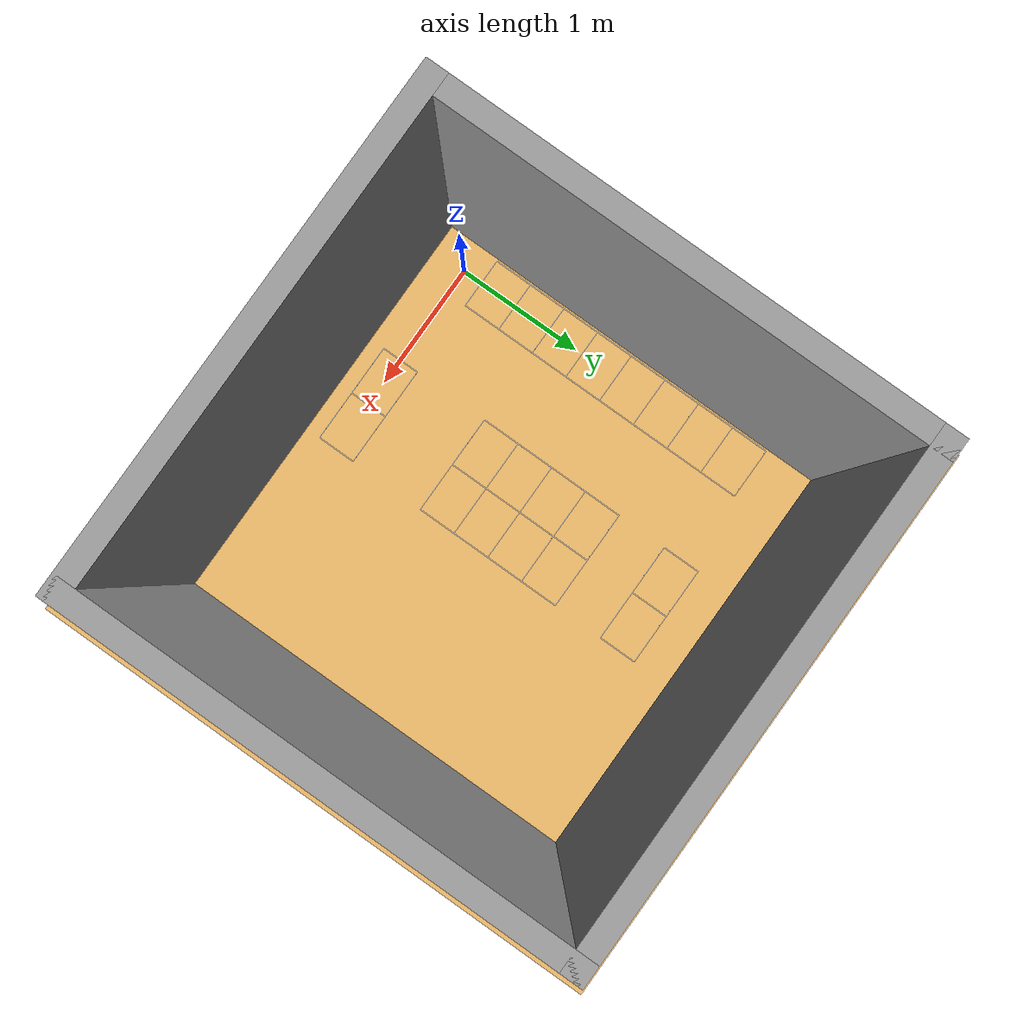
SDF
<sdf version="1.7">
 <world name="parking_lot">
  <light name="sun" type="directional">
   <pose>0 0 10 0 -0 0</pose>
   <diffuse>0.8 0.8 0.8 1</diffuse>
   <specular>0.2 0.2 0.2 1</specular>
   <attenuation>
    <range>1000</range>
    <constant>0.9</constant>
    <linear>0.01</linear>
    <quadratic>0.001</quadratic>
   </attenuation>
   <direction>-0.5 0.1 -0.9</direction>
   <spot><inner_angle>0</inner_angle><outer_angle>0</outer_angle><falloff>0</falloff></spot>
  </light>
  <model name="wood_ground_plane">
   <static>1</static>
   <link name="ground_link">
    <visual name="ground_visual">
     <geometry><plane><normal>0 0 1</normal><size>20 20</size></plane></geometry>
     <material><ambient>0.9 0.7 0.4 1</ambient><diffuse>0.9 0.7 0.4 1</diffuse></material>
    </visual>
    <collision name="collision">
     <geometry><plane><normal>0 0 1</normal><size>20 20</size></plane></geometry>
    </collision>
   </link>
  </model>
  <model name="parking_spot_1">
   <static>1</static>
   <pose>0 0.3 0 0 -0 0</pose>
   <link name="spot_link">
    <visual name="base_plate">
     <geometry><box><size>0.4 0.3 0.001</size></box></geometry>
     <material><ambient>0.9 0.7 0.4 1</ambient><diffuse>0.9 0.7 0.4 1</diffuse></material>
    </visual>
    <visual name="top_border">
     <pose>0 0.15 0.002 0 -0 0</pose>
     <geometry><box><size>0.4 0.005 0.001</size></box></geometry>
     <material><ambient>1 1 1 1</ambient><diffuse>1 1 1 1</diffuse></material>
    </visual>
    <visual name="bottom_border">
     <pose>0 -0.15 0.002 0 -0 0</pose>
     <geometry><box><size>0.4 0.005 0.001</size></box></geometry>
     <material><ambient>1 1 1 1</ambient><diffuse>1 1 1 1</diffuse></material>
    </visual>
    <visual name="left_border">
     <pose>-0.2 0 0.002 0 -0 0</pose>
     <geometry><box><size>0.005 0.3 0.001</size></box></geometry>
     <material><ambient>1 1 1 1</ambient><diffuse>1 1 1 1</diffuse></material>
    </visual>
    <visual name="right_border">
     <pose>0.2 0 0.002 0 -0 0</pose>
     <geometry><box><size>0.005 0.3 0.001</size></box></geometry>
     <material><ambient>1 1 1 1</ambient><diffuse>1 1 1 1</diffuse></material>
    </visual>
   </link>
  </model>
  <model name="parking_spot_2">
   <static>1</static>
   <pose>0 0.6 0 0 -0 0</pose>
   <link name="spot_link">
    <visual name="base_plate">
     <geometry><box><size>0.4 0.3 0.001</size></box></geometry>
     <material><ambient>0.9 0.7 0.4 1</ambient><diffuse>0.9 0.7 0.4 1</diffuse></material>
    </visual>
    <visual name="top_border">
     <pose>0 0.15 0.002 0 -0 0</pose>
     <geometry><box><size>0.4 0.005 0.001</size></box></geometry>
     <material><ambient>1 1 1 1</ambient><diffuse>1 1 1 1</diffuse></material>
    </visual>
    <visual name="bottom_border">
     <pose>0 -0.15 0.002 0 -0 0</pose>
     <geometry><box><size>0.4 0.005 0.001</size></box></geometry>
     <material><ambient>1 1 1 1</ambient><diffuse>1 1 1 1</diffuse></material>
    </visual>
    <visual name="left_border">
     <pose>-0.2 0 0.002 0 -0 0</pose>
     <geometry><box><size>0.005 0.3 0.001</size></box></geometry>
     <material><ambient>1 1 1 1</ambient><diffuse>1 1 1 1</diffuse></material>
    </visual>
    <visual name="right_border">
     <pose>0.2 0 0.002 0 -0 0</pose>
     <geometry><box><size>0.005 0.3 0.001</size></box></geometry>
     <material><ambient>1 1 1 1</ambient><diffuse>1 1 1 1</diffuse></material>
    </visual>
   </link>
  </model>
  <model name="parking_spot_3">
   <static>1</static>
   <pose>0 0.9 0 0 -0 0</pose>
   <link name="spot_link">
    <visual name="base_plate">
     <geometry><box><size>0.4 0.3 0.001</size></box></geometry>
     <material><ambient>0.9 0.7 0.4 1</ambient><diffuse>0.9 0.7 0.4 1</diffuse></material>
    </visual>
    <visual name="top_border">
     <pose>0 0.15 0.002 0 -0 0</pose>
     <geometry><box><size>0.4 0.005 0.001</size></box></geometry>
     <material><ambient>1 1 1 1</ambient><diffuse>1 1 1 1</diffuse></material>
    </visual>
    <visual name="bottom_border">
     <pose>0 -0.15 0.002 0 -0 0</pose>
     <geometry><box><size>0.4 0.005 0.001</size></box></geometry>
     <material><ambient>1 1 1 1</ambient><diffuse>1 1 1 1</diffuse></material>
    </visual>
    <visual name="left_border">
     <pose>-0.2 0 0.002 0 -0 0</pose>
     <geometry><box><size>0.005 0.3 0.001</size></box></geometry>
     <material><ambient>1 1 1 1</ambient><diffuse>1 1 1 1</diffuse></material>
    </visual>
    <visual name="right_border">
     <pose>0.2 0 0.002 0 -0 0</pose>
     <geometry><box><size>0.005 0.3 0.001</size></box></geometry>
     <material><ambient>1 1 1 1</ambient><diffuse>1 1 1 1</diffuse></material>
    </visual>
   </link>
  </model>
  <model name="parking_spot_4">
   <static>1</static>
   <pose>0 1.2 0 0 -0 0</pose>
   <link name="spot_link">
    <visual name="base_plate">
     <geometry><box><size>0.4 0.3 0.001</size></box></geometry>
     <material><ambient>0.9 0.7 0.4 1</ambient><diffuse>0.9 0.7 0.4 1</diffuse></material>
    </visual>
    <visual name="top_border">
     <pose>0 0.15 0.002 0 -0 0</pose>
     <geometry><box><size>0.4 0.005 0.001</size></box></geometry>
     <material><ambient>1 1 1 1</ambient><diffuse>1 1 1 1</diffuse></material>
    </visual>
    <visual name="bottom_border">
     <pose>0 -0.15 0.002 0 -0 0</pose>
     <geometry><box><size>0.4 0.005 0.001</size></box></geometry>
     <material><ambient>1 1 1 1</ambient><diffuse>1 1 1 1</diffuse></material>
    </visual>
    <visual name="left_border">
     <pose>-0.2 0 0.002 0 -0 0</pose>
     <geometry><box><size>0.005 0.3 0.001</size></box></geometry>
     <material><ambient>1 1 1 1</ambient><diffuse>1 1 1 1</diffuse></material>
    </visual>
    <visual name="right_border">
     <pose>0.2 0 0.002 0 -0 0</pose>
     <geometry><box><size>0.005 0.3 0.001</size></box></geometry>
     <material><ambient>1 1 1 1</ambient><diffuse>1 1 1 1</diffuse></material>
    </visual>
   </link>
  </model>
  <model name="parking_spot_5">
   <static>1</static>
   <pose>0 1.5 0 0 -0 0</pose>
   <link name="spot_link">
    <visual name="base_plate">
     <geometry><box><size>0.4 0.3 0.001</size></box></geometry>
     <material><ambient>0.9 0.7 0.4 1</ambient><diffuse>0.9 0.7 0.4 1</diffuse></material>
    </visual>
    <visual name="top_border">
     <pose>0 0.15 0.002 0 -0 0</pose>
     <geometry><box><size>0.4 0.005 0.001</size></box></geometry>
     <material><ambient>1 1 1 1</ambient><diffuse>1 1 1 1</diffuse></material>
    </visual>
    <visual name="bottom_border">
     <pose>0 -0.15 0.002 0 -0 0</pose>
     <geometry><box><size>0.4 0.005 0.001</size></box></geometry>
     <material><ambient>1 1 1 1</ambient><diffuse>1 1 1 1</diffuse></material>
    </visual>
    <visual name="left_border">
     <pose>-0.2 0 0.002 0 -0 0</pose>
     <geometry><box><size>0.005 0.3 0.001</size></box></geometry>
     <material><ambient>1 1 1 1</ambient><diffuse>1 1 1 1</diffuse></material>
    </visual>
    <visual name="right_border">
     <pose>0.2 0 0.002 0 -0 0</pose>
     <geometry><box><size>0.005 0.3 0.001</size></box></geometry>
     <material><ambient>1 1 1 1</ambient><diffuse>1 1 1 1</diffuse></material>
    </visual>
   </link>
  </model>
  <model name="parking_spot_6">
   <static>1</static>
   <pose>0 1.8 0 0 -0 0</pose>
   <link name="spot_link">
    <visual name="base_plate">
     <geometry><box><size>0.4 0.3 0.001</size></box></geometry>
     <material><ambient>0.9 0.7 0.4 1</ambient><diffuse>0.9 0.7 0.4 1</diffuse></material>
    </visual>
    <visual name="top_border">
     <pose>0 0.15 0.002 0 -0 0</pose>
     <geometry><box><size>0.4 0.005 0.001</size></box></geometry>
     <material><ambient>1 1 1 1</ambient><diffuse>1 1 1 1</diffuse></material>
    </visual>
    <visual name="bottom_border">
     <pose>0 -0.15 0.002 0 -0 0</pose>
     <geometry><box><size>0.4 0.005 0.001</size></box></geometry>
     <material><ambient>1 1 1 1</ambient><diffuse>1 1 1 1</diffuse></material>
    </visual>
    <visual name="left_border">
     <pose>-0.2 0 0.002 0 -0 0</pose>
     <geometry><box><size>0.005 0.3 0.001</size></box></geometry>
     <material><ambient>1 1 1 1</ambient><diffuse>1 1 1 1</diffuse></material>
    </visual>
    <visual name="right_border">
     <pose>0.2 0 0.002 0 -0 0</pose>
     <geometry><box><size>0.005 0.3 0.001</size></box></geometry>
     <material><ambient>1 1 1 1</ambient><diffuse>1 1 1 1</diffuse></material>
    </visual>
   </link>
  </model>
  <model name="parking_spot_7">
   <static>1</static>
   <pose>0 2.1 0 0 -0 0</pose>
   <link name="spot_link">
    <visual name="base_plate">
     <geometry><box><size>0.4 0.3 0.001</size></box></geometry>
     <material><ambient>0.9 0.7 0.4 1</ambient><diffuse>0.9 0.7 0.4 1</diffuse></material>
    </visual>
    <visual name="top_border">
     <pose>0 0.15 0.002 0 -0 0</pose>
     <geometry><box><size>0.4 0.005 0.001</size></box></geometry>
     <material><ambient>1 1 1 1</ambient><diffuse>1 1 1 1</diffuse></material>
    </visual>
    <visual name="bottom_border">
     <pose>0 -0.15 0.002 0 -0 0</pose>
     <geometry><box><size>0.4 0.005 0.001</size></box></geometry>
     <material><ambient>1 1 1 1</ambient><diffuse>1 1 1 1</diffuse></material>
    </visual>
    <visual name="left_border">
     <pose>-0.2 0 0.002 0 -0 0</pose>
     <geometry><box><size>0.005 0.3 0.001</size></box></geometry>
     <material><ambient>1 1 1 1</ambient><diffuse>1 1 1 1</diffuse></material>
    </visual>
    <visual name="right_border">
     <pose>0.2 0 0.002 0 -0 0</pose>
     <geometry><box><size>0.005 0.3 0.001</size></box></geometry>
     <material><ambient>1 1 1 1</ambient><diffuse>1 1 1 1</diffuse></material>
    </visual>
   </link>
  </model>
  <model name="parking_spot_8">
   <static>1</static>
   <pose>0 2.4 0 0 -0 0</pose>
   <link name="spot_link">
    <visual name="base_plate">
     <geometry><box><size>0.4 0.3 0.001</size></box></geometry>
     <material><ambient>0.9 0.7 0.4 1</ambient><diffuse>0.9 0.7 0.4 1</diffuse></material>
    </visual>
    <visual name="top_border">
     <pose>0 0.15 0.002 0 -0 0</pose>
     <geometry><box><size>0.4 0.005 0.001</size></box></geometry>
     <material><ambient>1 1 1 1</ambient><diffuse>1 1 1 1</diffuse></material>
    </visual>
    <visual name="bottom_border">
     <pose>0 -0.15 0.002 0 -0 0</pose>
     <geometry><box><size>0.4 0.005 0.001</size></box></geometry>
     <material><ambient>1 1 1 1</ambient><diffuse>1 1 1 1</diffuse></material>
    </visual>
    <visual name="left_border">
     <pose>-0.2 0 0.002 0 -0 0</pose>
     <geometry><box><size>0.005 0.3 0.001</size></box></geometry>
     <material><ambient>1 1 1 1</ambient><diffuse>1 1 1 1</diffuse></material>
    </visual>
    <visual name="right_border">
     <pose>0.2 0 0.002 0 -0 0</pose>
     <geometry><box><size>0.005 0.3 0.001</size></box></geometry>
     <material><ambient>1 1 1 1</ambient><diffuse>1 1 1 1</diffuse></material>
    </visual>
   </link>
  </model>
  <model name="parking_spot_9">
   <static>1</static>
   <pose>1 0 0 0 -0 0</pose>
   <link name="spot_link">
    <visual name="base_plate">
     <geometry><box><size>0.4 0.3 0.001</size></box></geometry>
     <material><ambient>0.9 0.7 0.4 1</ambient><diffuse>0.9 0.7 0.4 1</diffuse></material>
    </visual>
    <visual name="top_border">
     <pose>0 0.15 0.002 0 -0 0</pose>
     <geometry><box><size>0.4 0.005 0.001</size></box></geometry>
     <material><ambient>1 1 1 1</ambient><diffuse>1 1 1 1</diffuse></material>
    </visual>
    <visual name="bottom_border">
     <pose>0 -0.15 0.002 0 -0 0</pose>
     <geometry><box><size>0.4 0.005 0.001</size></box></geometry>
     <material><ambient>1 1 1 1</ambient><diffuse>1 1 1 1</diffuse></material>
    </visual>
    <visual name="left_border">
     <pose>-0.2 0 0.002 0 -0 0</pose>
     <geometry><box><size>0.005 0.3 0.001</size></box></geometry>
     <material><ambient>1 1 1 1</ambient><diffuse>1 1 1 1</diffuse></material>
    </visual>
    <visual name="right_border">
     <pose>0.2 0 0.002 0 -0 0</pose>
     <geometry><box><size>0.005 0.3 0.001</size></box></geometry>
     <material><ambient>1 1 1 1</ambient><diffuse>1 1 1 1</diffuse></material>
    </visual>
   </link>
  </model>
  <model name="parking_spot_10">
   <static>1</static>
   <pose>1.4 0 0 0 -0 0</pose>
   <link name="spot_link">
    <visual name="base_plate">
     <geometry><box><size>0.4 0.3 0.001</size></box></geometry>
     <material><ambient>0.9 0.7 0.4 1</ambient><diffuse>0.9 0.7 0.4 1</diffuse></material>
    </visual>
    <visual name="top_border">
     <pose>0 0.15 0.002 0 -0 0</pose>
     <geometry><box><size>0.4 0.005 0.001</size></box></geometry>
     <material><ambient>1 1 1 1</ambient><diffuse>1 1 1 1</diffuse></material>
    </visual>
    <visual name="bottom_border">
     <pose>0 -0.15 0.002 0 -0 0</pose>
     <geometry><box><size>0.4 0.005 0.001</size></box></geometry>
     <material><ambient>1 1 1 1</ambient><diffuse>1 1 1 1</diffuse></material>
    </visual>
    <visual name="left_border">
     <pose>-0.2 0 0.002 0 -0 0</pose>
     <geometry><box><size>0.005 0.3 0.001</size></box></geometry>
     <material><ambient>1 1 1 1</ambient><diffuse>1 1 1 1</diffuse></material>
    </visual>
    <visual name="right_border">
     <pose>0.2 0 0.002 0 -0 0</pose>
     <geometry><box><size>0.005 0.3 0.001</size></box></geometry>
     <material><ambient>1 1 1 1</ambient><diffuse>1 1 1 1</diffuse></material>
    </visual>
   </link>
  </model>
  <model name="parking_spot_11">
   <static>1</static>
   <pose>1 1.8 0 0 -0 0</pose>
   <link name="spot_link">
    <visual name="base_plate">
     <geometry><box><size>0.4 0.3 0.001</size></box></geometry>
     <material><ambient>0.9 0.7 0.4 1</ambient><diffuse>0.9 0.7 0.4 1</diffuse></material>
    </visual>
    <visual name="top_border">
     <pose>0 0.15 0.002 0 -0 0</pose>
     <geometry><box><size>0.4 0.005 0.001</size></box></geometry>
     <material><ambient>1 1 1 1</ambient><diffuse>1 1 1 1</diffuse></material>
    </visual>
    <visual name="bottom_border">
     <pose>0 -0.15 0.002 0 -0 0</pose>
     <geometry><box><size>0.4 0.005 0.001</size></box></geometry>
     <material><ambient>1 1 1 1</ambient><diffuse>1 1 1 1</diffuse></material>
    </visual>
    <visual name="left_border">
     <pose>-0.2 0 0.002 0 -0 0</pose>
     <geometry><box><size>0.005 0.3 0.001</size></box></geometry>
     <material><ambient>1 1 1 1</ambient><diffuse>1 1 1 1</diffuse></material>
    </visual>
    <visual name="right_border">
     <pose>0.2 0 0.002 0 -0 0</pose>
     <geometry><box><size>0.005 0.3 0.001</size></box></geometry>
     <material><ambient>1 1 1 1</ambient><diffuse>1 1 1 1</diffuse></material>
    </visual>
   </link>
  </model>
  <model name="parking_spot_12">
   <static>1</static>
   <pose>1 1.5 0 0 -0 0</pose>
   <link name="spot_link">
    <visual name="base_plate">
     <geometry><box><size>0.4 0.3 0.001</size></box></geometry>
     <material><ambient>0.9 0.7 0.4 1</ambient><diffuse>0.9 0.7 0.4 1</diffuse></material>
    </visual>
    <visual name="top_border">
     <pose>0 0.15 0.002 0 -0 0</pose>
     <geometry><box><size>0.4 0.005 0.001</size></box></geometry>
     <material><ambient>1 1 1 1</ambient><diffuse>1 1 1 1</diffuse></material>
    </visual>
    <visual name="bottom_border">
     <pose>0 -0.15 0.002 0 -0 0</pose>
     <geometry><box><size>0.4 0.005 0.001</size></box></geometry>
     <material><ambient>1 1 1 1</ambient><diffuse>1 1 1 1</diffuse></material>
    </visual>
    <visual name="left_border">
     <pose>-0.2 0 0.002 0 -0 0</pose>
     <geometry><box><size>0.005 0.3 0.001</size></box></geometry>
     <material><ambient>1 1 1 1</ambient><diffuse>1 1 1 1</diffuse></material>
    </visual>
    <visual name="right_border">
     <pose>0.2 0 0.002 0 -0 0</pose>
     <geometry><box><size>0.005 0.3 0.001</size></box></geometry>
     <material><ambient>1 1 1 1</ambient><diffuse>1 1 1 1</diffuse></material>
    </visual>
   </link>
  </model>
  <model name="parking_spot_13">
   <static>1</static>
   <pose>1 1.2 0 0 -0 0</pose>
   <link name="spot_link">
    <visual name="base_plate">
     <geometry><box><size>0.4 0.3 0.001</size></box></geometry>
     <material><ambient>0.9 0.7 0.4 1</ambient><diffuse>0.9 0.7 0.4 1</diffuse></material>
    </visual>
    <visual name="top_border">
     <pose>0 0.15 0.002 0 -0 0</pose>
     <geometry><box><size>0.4 0.005 0.001</size></box></geometry>
     <material><ambient>1 1 1 1</ambient><diffuse>1 1 1 1</diffuse></material>
    </visual>
    <visual name="bottom_border">
     <pose>0 -0.15 0.002 0 -0 0</pose>
     <geometry><box><size>0.4 0.005 0.001</size></box></geometry>
     <material><ambient>1 1 1 1</ambient><diffuse>1 1 1 1</diffuse></material>
    </visual>
    <visual name="left_border">
     <pose>-0.2 0 0.002 0 -0 0</pose>
     <geometry><box><size>0.005 0.3 0.001</size></box></geometry>
     <material><ambient>1 1 1 1</ambient><diffuse>1 1 1 1</diffuse></material>
    </visual>
    <visual name="right_border">
     <pose>0.2 0 0.002 0 -0 0</pose>
     <geometry><box><size>0.005 0.3 0.001</size></box></geometry>
     <material><ambient>1 1 1 1</ambient><diffuse>1 1 1 1</diffuse></material>
    </visual>
   </link>
  </model>
  <model name="parking_spot_14">
   <static>1</static>
   <pose>1 0.9 0 0 -0 0</pose>
   <link name="spot_link">
    <visual name="base_plate">
     <geometry><box><size>0.4 0.3 0.001</size></box></geometry>
     <material><ambient>0.9 0.7 0.4 1</ambient><diffuse>0.9 0.7 0.4 1</diffuse></material>
    </visual>
    <visual name="top_border">
     <pose>0 0.15 0.002 0 -0 0</pose>
     <geometry><box><size>0.4 0.005 0.001</size></box></geometry>
     <material><ambient>1 1 1 1</ambient><diffuse>1 1 1 1</diffuse></material>
    </visual>
    <visual name="bottom_border">
     <pose>0 -0.15 0.002 0 -0 0</pose>
     <geometry><box><size>0.4 0.005 0.001</size></box></geometry>
     <material><ambient>1 1 1 1</ambient><diffuse>1 1 1 1</diffuse></material>
    </visual>
    <visual name="left_border">
     <pose>-0.2 0 0.002 0 -0 0</pose>
     <geometry><box><size>0.005 0.3 0.001</size></box></geometry>
     <material><ambient>1 1 1 1</ambient><diffuse>1 1 1 1</diffuse></material>
    </visual>
    <visual name="right_border">
     <pose>0.2 0 0.002 0 -0 0</pose>
     <geometry><box><size>0.005 0.3 0.001</size></box></geometry>
     <material><ambient>1 1 1 1</ambient><diffuse>1 1 1 1</diffuse></material>
    </visual>
   </link>
  </model>
  <model name="parking_spot_15">
   <static>1</static>
   <pose>1.4 1.8 0 0 -0 0</pose>
   <link name="spot_link">
    <visual name="base_plate">
     <geometry><box><size>0.4 0.3 0.001</size></box></geometry>
     <material><ambient>0.9 0.7 0.4 1</ambient><diffuse>0.9 0.7 0.4 1</diffuse></material>
    </visual>
    <visual name="top_border">
     <pose>0 0.15 0.002 0 -0 0</pose>
     <geometry><box><size>0.4 0.005 0.001</size></box></geometry>
     <material><ambient>1 1 1 1</ambient><diffuse>1 1 1 1</diffuse></material>
    </visual>
    <visual name="bottom_border">
     <pose>0 -0.15 0.002 0 -0 0</pose>
     <geometry><box><size>0.4 0.005 0.001</size></box></geometry>
     <material><ambient>1 1 1 1</ambient><diffuse>1 1 1 1</diffuse></material>
    </visual>
    <visual name="left_border">
     <pose>-0.2 0 0.002 0 -0 0</pose>
     <geometry><box><size>0.005 0.3 0.001</size></box></geometry>
     <material><ambient>1 1 1 1</ambient><diffuse>1 1 1 1</diffuse></material>
    </visual>
    <visual name="right_border">
     <pose>0.2 0 0.002 0 -0 0</pose>
     <geometry><box><size>0.005 0.3 0.001</size></box></geometry>
     <material><ambient>1 1 1 1</ambient><diffuse>1 1 1 1</diffuse></material>
    </visual>
   </link>
  </model>
  <model name="parking_spot_16">
   <static>1</static>
   <pose>1.4 1.5 0 0 -0 0</pose>
   <link name="spot_link">
    <visual name="base_plate">
     <geometry><box><size>0.4 0.3 0.001</size></box></geometry>
     <material><ambient>0.9 0.7 0.4 1</ambient><diffuse>0.9 0.7 0.4 1</diffuse></material>
    </visual>
    <visual name="top_border">
     <pose>0 0.15 0.002 0 -0 0</pose>
     <geometry><box><size>0.4 0.005 0.001</size></box></geometry>
     <material><ambient>1 1 1 1</ambient><diffuse>1 1 1 1</diffuse></material>
    </visual>
    <visual name="bottom_border">
     <pose>0 -0.15 0.002 0 -0 0</pose>
     <geometry><box><size>0.4 0.005 0.001</size></box></geometry>
     <material><ambient>1 1 1 1</ambient><diffuse>1 1 1 1</diffuse></material>
    </visual>
    <visual name="left_border">
     <pose>-0.2 0 0.002 0 -0 0</pose>
     <geometry><box><size>0.005 0.3 0.001</size></box></geometry>
     <material><ambient>1 1 1 1</ambient><diffuse>1 1 1 1</diffuse></material>
    </visual>
    <visual name="right_border">
     <pose>0.2 0 0.002 0 -0 0</pose>
     <geometry><box><size>0.005 0.3 0.001</size></box></geometry>
     <material><ambient>1 1 1 1</ambient><diffuse>1 1 1 1</diffuse></material>
    </visual>
   </link>
  </model>
  <model name="parking_spot_17">
   <static>1</static>
   <pose>1.4 1.2 0 0 -0 0</pose>
   <link name="spot_link">
    <visual name="base_plate">
     <geometry><box><size>0.4 0.3 0.001</size></box></geometry>
     <material><ambient>0.9 0.7 0.4 1</ambient><diffuse>0.9 0.7 0.4 1</diffuse></material>
    </visual>
    <visual name="top_border">
     <pose>0 0.15 0.002 0 -0 0</pose>
     <geometry><box><size>0.4 0.005 0.001</size></box></geometry>
     <material><ambient>1 1 1 1</ambient><diffuse>1 1 1 1</diffuse></material>
    </visual>
    <visual name="bottom_border">
     <pose>0 -0.15 0.002 0 -0 0</pose>
     <geometry><box><size>0.4 0.005 0.001</size></box></geometry>
     <material><ambient>1 1 1 1</ambient><diffuse>1 1 1 1</diffuse></material>
    </visual>
    <visual name="left_border">
     <pose>-0.2 0 0.002 0 -0 0</pose>
     <geometry><box><size>0.005 0.3 0.001</size></box></geometry>
     <material><ambient>1 1 1 1</ambient><diffuse>1 1 1 1</diffuse></material>
    </visual>
    <visual name="right_border">
     <pose>0.2 0 0.002 0 -0 0</pose>
     <geometry><box><size>0.005 0.3 0.001</size></box></geometry>
     <material><ambient>1 1 1 1</ambient><diffuse>1 1 1 1</diffuse></material>
    </visual>
   </link>
  </model>
  <model name="parking_spot_18">
   <static>1</static>
   <pose>1.4 0.9 0 0 -0 0</pose>
   <link name="spot_link">
    <visual name="base_plate">
     <geometry><box><size>0.4 0.3 0.001</size></box></geometry>
     <material><ambient>0.9 0.7 0.4 1</ambient><diffuse>0.9 0.7 0.4 1</diffuse></material>
    </visual>
    <visual name="top_border">
     <pose>0 0.15 0.002 0 -0 0</pose>
     <geometry><box><size>0.4 0.005 0.001</size></box></geometry>
     <material><ambient>1 1 1 1</ambient><diffuse>1 1 1 1</diffuse></material>
    </visual>
    <visual name="bottom_border">
     <pose>0 -0.15 0.002 0 -0 0</pose>
     <geometry><box><size>0.4 0.005 0.001</size></box></geometry>
     <material><ambient>1 1 1 1</ambient><diffuse>1 1 1 1</diffuse></material>
    </visual>
    <visual name="left_border">
     <pose>-0.2 0 0.002 0 -0 0</pose>
     <geometry><box><size>0.005 0.3 0.001</size></box></geometry>
     <material><ambient>1 1 1 1</ambient><diffuse>1 1 1 1</diffuse></material>
    </visual>
    <visual name="right_border">
     <pose>0.2 0 0.002 0 -0 0</pose>
     <geometry><box><size>0.005 0.3 0.001</size></box></geometry>
     <material><ambient>1 1 1 1</ambient><diffuse>1 1 1 1</diffuse></material>
    </visual>
   </link>
  </model>
  <model name="parking_spot_19">
   <static>1</static>
   <pose>1 2.5 0 0 -0 0</pose>
   <link name="spot_link">
    <visual name="base_plate">
     <geometry><box><size>0.4 0.3 0.001</size></box></geometry>
     <material><ambient>0.9 0.7 0.4 1</ambient><diffuse>0.9 0.7 0.4 1</diffuse></material>
    </visual>
    <visual name="top_border">
     <pose>0 0.15 0.002 0 -0 0</pose>
     <geometry><box><size>0.4 0.005 0.001</size></box></geometry>
     <material><ambient>1 1 1 1</ambient><diffuse>1 1 1 1</diffuse></material>
    </visual>
    <visual name="bottom_border">
     <pose>0 -0.15 0.002 0 -0 0</pose>
     <geometry><box><size>0.4 0.005 0.001</size></box></geometry>
     <material><ambient>1 1 1 1</ambient><diffuse>1 1 1 1</diffuse></material>
    </visual>
    <visual name="left_border">
     <pose>-0.2 0 0.002 0 -0 0</pose>
     <geometry><box><size>0.005 0.3 0.001</size></box></geometry>
     <material><ambient>1 1 1 1</ambient><diffuse>1 1 1 1</diffuse></material>
    </visual>
    <visual name="right_border">
     <pose>0.2 0 0.002 0 -0 0</pose>
     <geometry><box><size>0.005 0.3 0.001</size></box></geometry>
     <material><ambient>1 1 1 1</ambient><diffuse>1 1 1 1</diffuse></material>
    </visual>
   </link>
  </model>
  <model name="parking_spot_20">
   <static>1</static>
   <pose>1.4 2.5 0 0 -0 0</pose>
   <link name="spot_link">
    <visual name="base_plate">
     <geometry><box><size>0.4 0.3 0.001</size></box></geometry>
     <material><ambient>0.9 0.7 0.4 1</ambient><diffuse>0.9 0.7 0.4 1</diffuse></material>
    </visual>
    <visual name="top_border">
     <pose>0 0.15 0.002 0 -0 0</pose>
     <geometry><box><size>0.4 0.005 0.001</size></box></geometry>
     <material><ambient>1 1 1 1</ambient><diffuse>1 1 1 1</diffuse></material>
    </visual>
    <visual name="bottom_border">
     <pose>0 -0.15 0.002 0 -0 0</pose>
     <geometry><box><size>0.4 0.005 0.001</size></box></geometry>
     <material><ambient>1 1 1 1</ambient><diffuse>1 1 1 1</diffuse></material>
    </visual>
    <visual name="left_border">
     <pose>-0.2 0 0.002 0 -0 0</pose>
     <geometry><box><size>0.005 0.3 0.001</size></box></geometry>
     <material><ambient>1 1 1 1</ambient><diffuse>1 1 1 1</diffuse></material>
    </visual>
    <visual name="right_border">
     <pose>0.2 0 0.002 0 -0 0</pose>
     <geometry><box><size>0.005 0.3 0.001</size></box></geometry>
     <material><ambient>1 1 1 1</ambient><diffuse>1 1 1 1</diffuse></material>
    </visual>
   </link>
  </model>
  <gravity>0 0 -9.8</gravity>
  <magnetic_field>6e-06 2.3e-05 -4.2e-05</magnetic_field>
  <atmosphere type="adiabatic"/>
  <physics type="ode">
   <max_step_size>0.001</max_step_size>
   <real_time_factor>1</real_time_factor>
   <real_time_update_rate>1000</real_time_update_rate>
  </physics>
  <scene><ambient>0.4 0.4 0.4 1</ambient><background>0.7 0.7 0.7 1</background><shadows>1</shadows></scene>
  <spherical_coordinates>
   <surface_model>EARTH_WGS84</surface_model>
   <latitude_deg>0</latitude_deg>
   <longitude_deg>0</longitude_deg>
   <elevation>0</elevation>
   <heading_deg>0</heading_deg>
  </spherical_coordinates>
  <model name="parking_wall_3.5m">
   <pose>1.38369 2.06795 0 0 -0 0</pose>
   <link name="Wall_2">
    <collision name="Wall_2_Collision">
     <geometry><box><size>3.5 0.15 2.5</size></box></geometry>
     <pose>0 0 1.25 0 -0 0</pose>
    </collision>
    <visual name="Wall_2_Visual">
     <pose>0 0 1.25 0 -0 0</pose>
     <geometry><box><size>3.5 0.15 2.5</size></box></geometry>
     <material>
      <script><uri>file://media/materials/scripts/gazebo.material</uri><name>Gazebo/Grey</name></script>
      <ambient>1 1 1 1</ambient>
     </material>
     <meta><layer>0</layer></meta>
    </visual>
    <pose>0 0.942857 0 0 -0 3.14159</pose>
   </link>
   <link name="Wall_3">
    <collision name="Wall_3_Collision">
     <geometry><box><size>3.5 0.15 2.5</size></box></geometry>
     <pose>0 0 1.25 0 -0 0</pose>
    </collision>
    <visual name="Wall_3_Visual">
     <pose>0 0 1.25 0 -0 0</pose>
     <geometry><box><size>3.5 0.15 2.5</size></box></geometry>
     <material>
      <script><uri>file://media/materials/scripts/gazebo.material</uri><name>Gazebo/Grey</name></script>
      <ambient>1 1 1 1</ambient>
     </material>
     <meta><layer>0</layer></meta>
    </visual>
    <pose>-1.675 -0.732143 0 0 -0 -1.5708</pose>
   </link>
   <link name="Wall_4">
    <collision name="Wall_4_Collision">
     <geometry><box><size>3.5 0.15 2.5</size></box></geometry>
     <pose>0 0 1.25 0 -0 0</pose>
    </collision>
    <visual name="Wall_4_Visual">
     <pose>0 0 1.25 0 -0 0</pose>
     <geometry><box><size>3.5 0.15 2.5</size></box></geometry>
     <material>
      <script><uri>file://media/materials/scripts/gazebo.material</uri><name>Gazebo/Grey</name></script>
      <ambient>1 1 1 1</ambient>
     </material>
     <meta><layer>0</layer></meta>
    </visual>
    <pose>0 -2.40714 0 0 -0 0</pose>
   </link>
   <link name="Wall_5">
    <collision name="Wall_5_Collision">
     <geometry><box><size>3.5 0.15 2.5</size></box></geometry>
     <pose>0 0 1.25 0 -0 0</pose>
    </collision>
    <visual name="Wall_5_Visual">
     <pose>0 0 1.25 0 -0 0</pose>
     <geometry><box><size>3.5 0.15 2.5</size></box></geometry>
     <material>
      <script><uri>file://media/materials/scripts/gazebo.material</uri><name>Gazebo/Grey</name></script>
      <ambient>1 1 1 1</ambient>
     </material>
     <meta><layer>0</layer></meta>
    </visual>
    <pose>1.675 -0.732143 0 0 -0 1.5708</pose>
   </link>
   <static>1</static>
  </model>
 </world>
</sdf>
